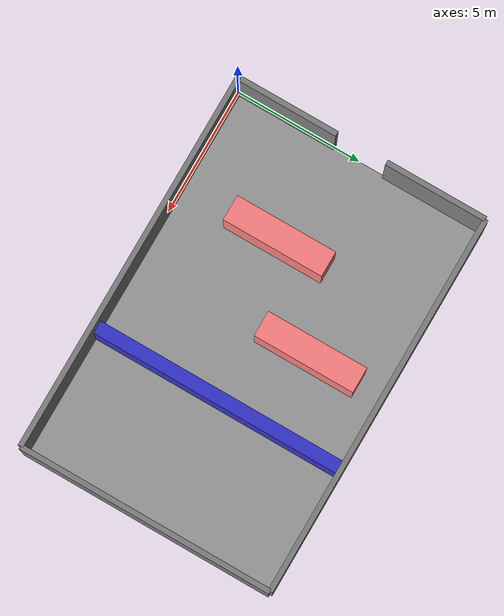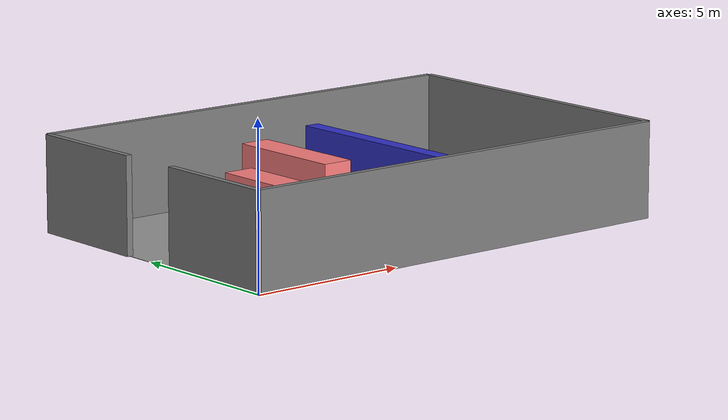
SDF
<?xml version="1.0" ?>
<sdf version="1.7">
  <world name="storage_level_0">

    <include>
      <uri>model://sun</uri>
    </include>

    <model name="floor">
      <static>true</static>
      <link name="link">
        <pose>7.5 5 0 0 0 0</pose>
        <collision name="collision">
          <geometry>
            <box>
              <size>15 10 0.01</size>
            </box>
          </geometry>
        </collision>
        <visual name="visual">
          <geometry>
            <box>
              <size>15 10 0.01</size>
            </box>
          </geometry>
          <material>
            <ambient>0.6 0.6 0.6 1</ambient>
          </material>
        </visual>
      </link>
    </model>

    <model name="ceiling">
      <static>true</static>
      <link name="link">
        <pose>7.5 5 3.0 0 0 0</pose>
        <collision name="collision">
          <geometry>
            <box>
              <size>15 10 0.01</size>
            </box>
          </geometry>
        </collision>
        <visual name="visual">
          <transparency>1.0</transparency>
          <geometry>
            <box>
              <size>15 10 0.01</size>
            </box>
          </geometry>
          <material>
            <ambient>0.4 0.4 0.4 1</ambient>
          </material>
        </visual>
      </link>
    </model>

    <model name="west_wall_south">
      <static>true</static>
      <link name="link">
        <pose>0 2 1.5 0 0 0</pose>
        <collision name="collision">
          <geometry>
            <box>
              <size>0.2 4 3.0</size>
            </box>
          </geometry>
        </collision>
        <visual name="visual">
          <geometry>
            <box>
              <size>0.2 4 3.0</size>
            </box>
          </geometry>
          <material>
            <ambient>0.5 0.5 0.5 1</ambient>
          </material>
        </visual>
      </link>
    </model>

    <model name="west_wall_north">
      <static>true</static>
      <link name="link">
        <pose>0 8 1.5 0 0 0</pose>
        <collision name="collision">
          <geometry>
            <box>
              <size>0.2 4 3.0</size>
            </box>
          </geometry>
        </collision>
        <visual name="visual">
          <geometry>
            <box>
              <size>0.2 4 3.0</size>
            </box>
          </geometry>
          <material>
            <ambient>0.5 0.5 0.5 1</ambient>
          </material>
        </visual>
      </link>
    </model>

    <model name="north_wall">
      <static>true</static>
      <link name="link">
        <pose>7.5 10 1.5 0 0 0</pose>
        <collision name="collision">
          <geometry>
            <box>
              <size>15 0.2 3.0</size>
            </box>
          </geometry>
        </collision>
        <visual name="visual">
          <geometry>
            <box>
              <size>15 0.2 3.0</size>
            </box>
          </geometry>
          <material>
            <ambient>0.5 0.5 0.5 1</ambient>
          </material>
        </visual>
      </link>
    </model>

    <model name="south_wall">
      <static>true</static>
      <link name="link">
        <pose>7.5 0 1.5 0 0 0</pose>
        <collision name="collision">
          <geometry>
            <box>
              <size>15 0.2 3.0</size>
            </box>
          </geometry>
        </collision>
        <visual name="visual">
          <geometry>
            <box>
              <size>15 0.2 3.0</size>
            </box>
          </geometry>
          <material>
            <ambient>0.5 0.5 0.5 1</ambient>
          </material>
        </visual>
      </link>
    </model>

    <model name="east_wall">
      <static>true</static>
      <link name="link">
        <pose>15 5 1.5 0 0 0</pose>
        <collision name="collision">
          <geometry>
            <box>
              <size>0.2 10 3.0</size>
            </box>
          </geometry>
        </collision>
        <visual name="visual">
          <geometry>
            <box>
              <size>0.2 10 3.0</size>
            </box>
          </geometry>
          <material>
            <ambient>0.5 0.5 0.5 1</ambient>
          </material>
        </visual>
      </link>
    </model>

    <model name='storage_shelf_1'>
      <pose>4.0 4.0 1.0 0 0 0</pose> <static>true</static>
      <link name='link'>
        <collision name='collision'>
          <geometry>
            <box>
              <size>1.0 4.0 2.0</size> </box>
          </geometry>
        </collision>
        <visual name='visual'>
          <geometry>
            <box>
              <size>1.0 4.0 2.0</size>
            </box>
          </geometry>
          <material>
            <ambient>1 0.5 0.5 1</ambient>
          </material>
        </visual>
      </link>
    </model>

    <model name='storage_shelf_2'>
      <pose>7.0 7.0 1.0 0 0 0</pose> <static>true</static>
      <link name='link'>
        <collision name='collision'>
          <geometry>
            <box>
              <size>1.0 4.0 2.0</size> </box>
          </geometry>
        </collision>
        <visual name='visual'>
          <geometry>
            <box>
              <size>1.0 4.0 2.0</size>
            </box>
          </geometry>
          <material>
            <ambient>1 0.5 0.5 1</ambient>
          </material>
        </visual>
      </link>
    </model>

    <model name="final_blockade_wall">
      <static>true</static>
      <link name="link">
        <pose>10 5 1.0 0 0 0</pose>
        <collision name="collision">
          <geometry>
            <box>
              <size>0.5 10 2.0</size>
            </box>
          </geometry>
        </collision>
        <visual name="visual">
          <geometry>
            <box>
              <size>0.5 10 2.0</size>
            </box>
          </geometry>
          <material>
            <ambient>0.2 0.2 0.8 1</ambient>
          </material>
        </visual>
      </link>
    </model>

  </world>
</sdf>
